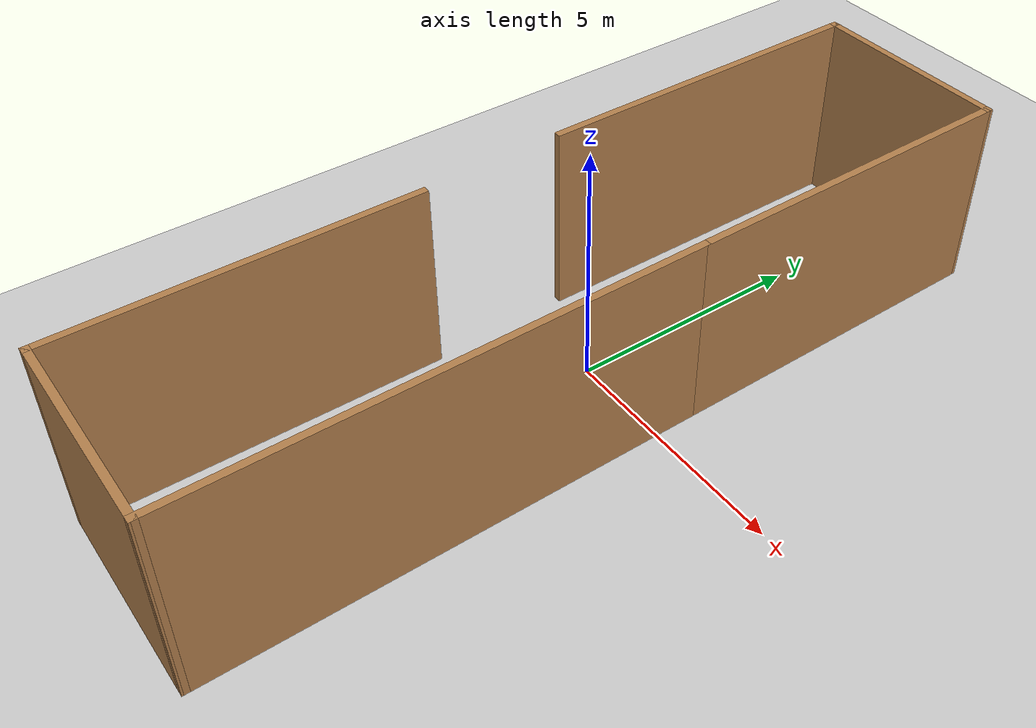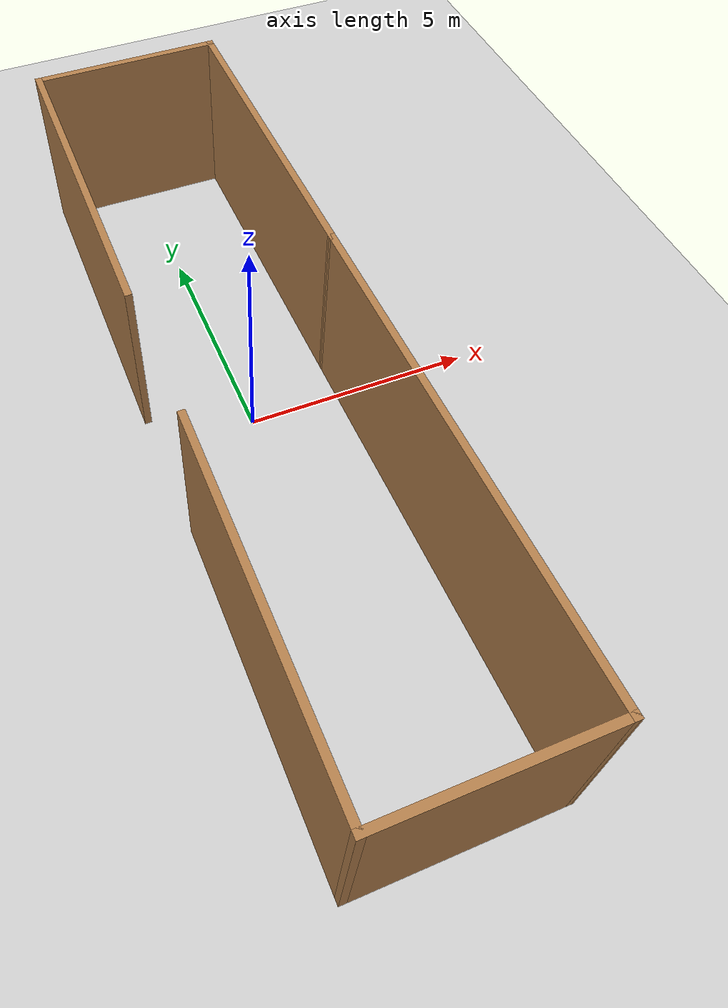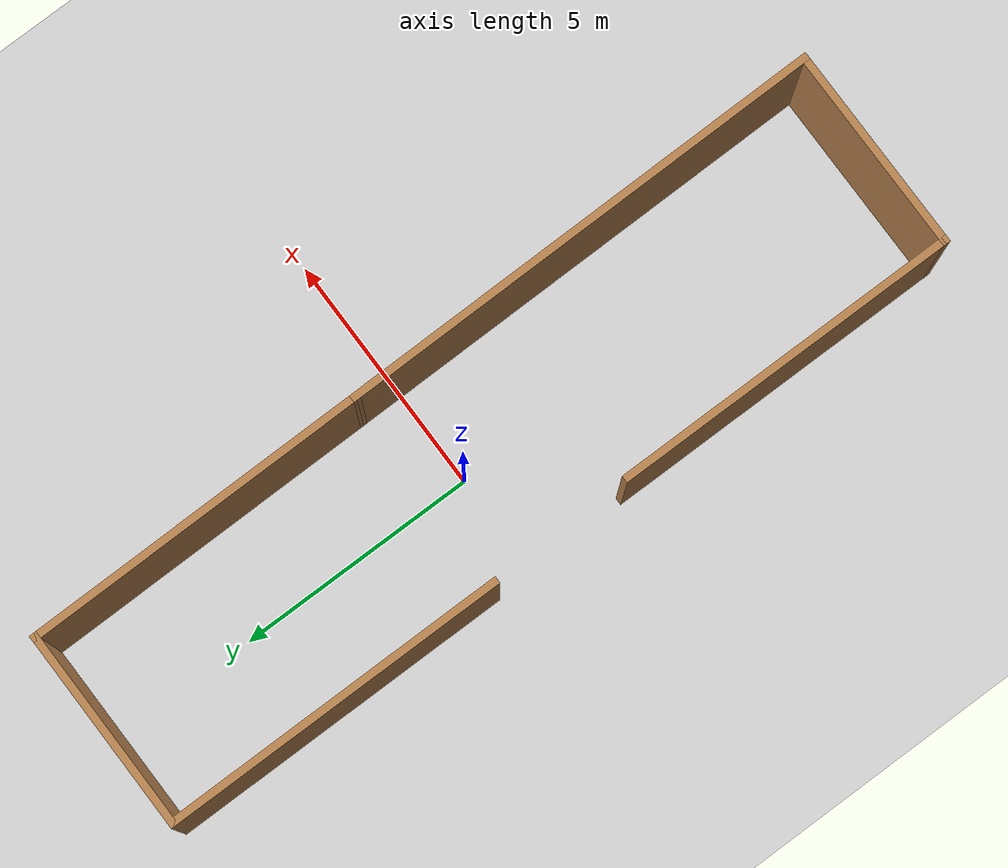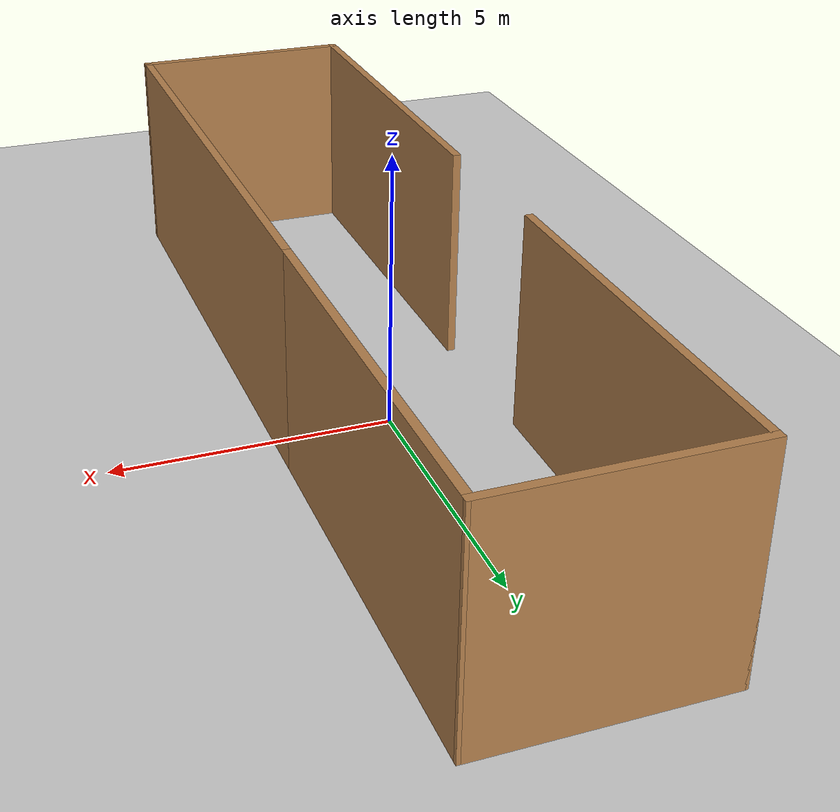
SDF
<sdf version="1.7">
 <world name="default">
  <plugin name="gazebo_ros_state" filename="libgazebo_ros_state.so">
   <ros>
    <namespace>/plug</namespace>
    <argument>model_states:=model_states_plug</argument>
    <argument>link_states:=link_states_plug</argument>
   </ros>
   <update_rate>100.0</update_rate>
  </plugin>
  <light name="sun" type="directional">
   <pose>0 0 10 0 -0 0</pose>
   <diffuse>0.8 0.8 0.8 1</diffuse>
   <specular>0.2 0.2 0.2 1</specular>
   <attenuation>
    <range>1000</range>
    <constant>0.9</constant>
    <linear>0.01</linear>
    <quadratic>0.001</quadratic>
   </attenuation>
   <direction>-0.5 0.1 -0.9</direction>
   <spot><inner_angle>0</inner_angle><outer_angle>0</outer_angle><falloff>0</falloff></spot>
  </light>
  <model name="ground_plane">
   <static>1</static>
   <link name="link">
    <collision name="collision">
     <laser_retro>100</laser_retro>
     <geometry><plane><normal>0 0 1</normal><size>100 100</size></plane></geometry>
     <surface><friction><ode><mu>100</mu><mu2>50</mu2></ode></friction></surface>
    </collision>
    <visual name="visual">
     <laser_retro>100</laser_retro>
     <cast_shadows>0</cast_shadows>
     <geometry><plane><normal>0 0 1</normal><size>100 100</size></plane></geometry>
     <material>
      <script><uri>file://media/materials/scripts/gazebo.material</uri><name>Gazebo/Grey</name></script>
     </material>
    </visual>
   </link>
  </model>
  <gravity>0 0 -9.8</gravity>
  <magnetic_field>6e-06 2.3e-05 -4.2e-05</magnetic_field>
  <atmosphere type="adiabatic"/>
  <physics type="ode">
   <max_step_size>0.01</max_step_size>
   <real_time_factor>1</real_time_factor>
   <real_time_update_rate>100</real_time_update_rate>
  </physics>
  <scene><ambient>0.4 0.4 0.4 1</ambient><background>0.7 0.7 0.7 1</background><shadows>1</shadows></scene>
  <audio><device>default</device></audio>
  <spherical_coordinates>
   <surface_model>EARTH_WGS84</surface_model>
   <latitude_deg>0</latitude_deg>
   <longitude_deg>0</longitude_deg>
   <elevation>0</elevation>
   <heading_deg>0</heading_deg>
  </spherical_coordinates>
  <model name="share_test_wall">
   <pose>0.013809 0.04474 -0.00392 0 -0 0</pose>
   <link name="Wall_0">
    <collision name="Wall_0_Collision">
     <geometry><box><size>7.25 0.15 4</size></box></geometry>
     <pose>0 0 2 0 -0 0</pose>
    </collision>
    <visual name="Wall_0_Visual">
     <pose>0 0 2 0 -0 0</pose>
     <geometry><box><size>7.25 0.15 4</size></box></geometry>
     <material>
      <script><uri>file://media/materials/scripts/gazebo.material</uri><name>Gazebo/Wood</name></script>
      <ambient>1 1 1 1</ambient>
     </material>
     <meta><layer>0</layer></meta>
    </visual>
    <pose>-2.10677 4.38537 0 0 -0 1.5708</pose>
   </link>
   <link name="Wall_1">
    <collision name="Wall_1_Collision">
     <geometry><box><size>4.25 0.15 4</size></box></geometry>
     <pose>0 0 2 0 -0 0</pose>
    </collision>
    <visual name="Wall_1_Visual">
     <pose>0 0 2 0 -0 0</pose>
     <geometry><box><size>4.25 0.15 4</size></box></geometry>
     <material>
      <script><uri>file://media/materials/scripts/gazebo.material</uri><name>Gazebo/Wood</name></script>
      <ambient>1 1 1 1</ambient>
     </material>
     <meta><layer>0</layer></meta>
    </visual>
    <pose>-0.05677 7.93537 0 0 -0 0</pose>
   </link>
   <link name="Wall_2">
    <collision name="Wall_2_Collision">
     <geometry><box><size>7.25 0.15 4</size></box></geometry>
     <pose>0 0 2 0 -0 0</pose>
    </collision>
    <visual name="Wall_2_Visual">
     <pose>0 0 2 0 -0 0</pose>
     <geometry><box><size>7.25 0.15 4</size></box></geometry>
     <material>
      <script><uri>file://media/materials/scripts/gazebo.material</uri><name>Gazebo/Wood</name></script>
      <ambient>1 1 1 1</ambient>
     </material>
     <meta><layer>0</layer></meta>
    </visual>
    <pose>2.01323 4.38537 0 0 -0 -1.56516</pose>
   </link>
   <link name="Wall_4">
    <collision name="Wall_4_Collision">
     <geometry><box><size>10.2757 0.15 4</size></box></geometry>
     <pose>0 0 2 0 -0 0</pose>
    </collision>
    <visual name="Wall_4_Visual">
     <pose>0 0 2 0 -0 0</pose>
     <geometry><box><size>10.2757 0.15 4</size></box></geometry>
     <material>
      <script><uri>file://media/materials/scripts/gazebo.material</uri><name>Gazebo/Wood</name></script>
      <ambient>1 1 1 1</ambient>
     </material>
     <meta><layer>0</layer></meta>
    </visual>
    <pose>2.06973 -4.22713 0 0 -0 -1.56359</pose>
   </link>
   <link name="Wall_5">
    <collision name="Wall_5_Collision">
     <geometry><box><size>4.29049 0.15 4</size></box></geometry>
     <pose>0 0 2 0 -0 0</pose>
    </collision>
    <visual name="Wall_5_Visual">
     <pose>0 0 2 0 -0 0</pose>
     <geometry><box><size>4.29049 0.15 4</size></box></geometry>
     <material>
      <script><uri>file://media/materials/scripts/gazebo.material</uri><name>Gazebo/Wood</name></script>
      <ambient>1 1 1 1</ambient>
     </material>
     <meta><layer>0</layer></meta>
    </visual>
    <pose>0.03623 -9.28963 0 0 -0 3.14159</pose>
   </link>
   <link name="Wall_6">
    <collision name="Wall_6_Collision">
     <geometry><box><size>7.25035 0.15 4</size></box></geometry>
     <pose>0 0 2 0 -0 0</pose>
    </collision>
    <visual name="Wall_6_Visual">
     <pose>0 0 2 0 -0 0</pose>
     <geometry><box><size>7.25035 0.15 4</size></box></geometry>
     <material>
      <script><uri>file://media/materials/scripts/gazebo.material</uri><name>Gazebo/Wood</name></script>
      <ambient>1 1 1 1</ambient>
     </material>
     <meta><layer>0</layer></meta>
    </visual>
    <pose>-2.03377 -5.73963 0 0 -0 1.5708</pose>
   </link>
   <static>1</static>
  </model>
 </world>
</sdf>
